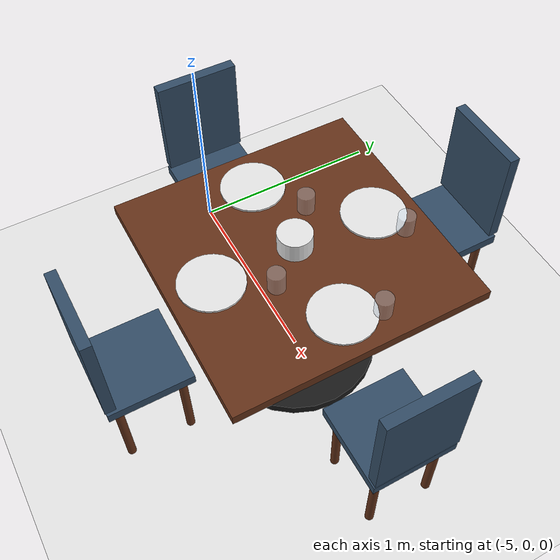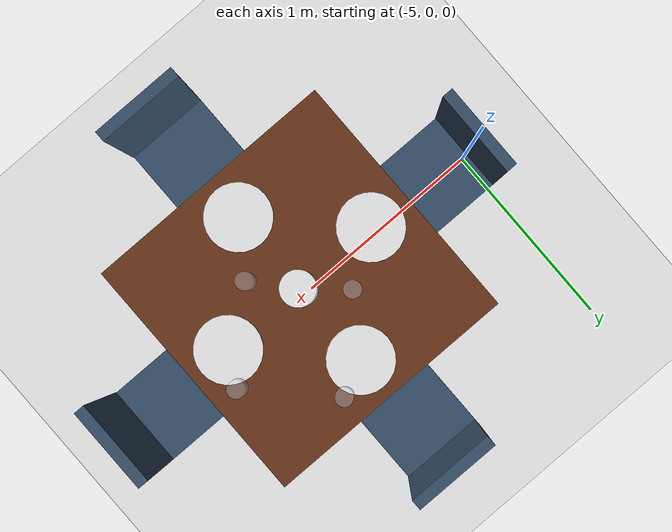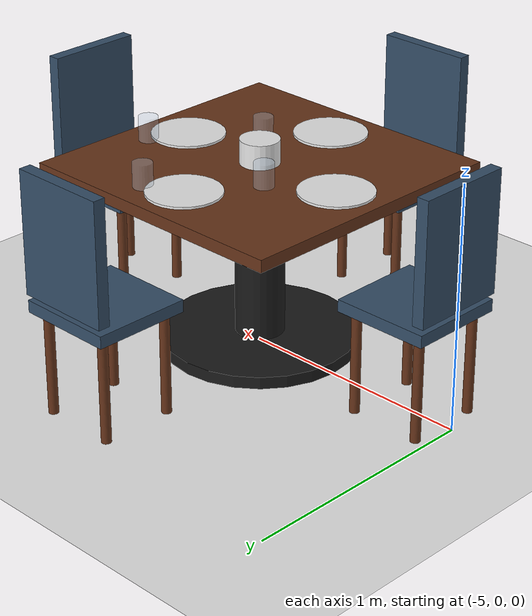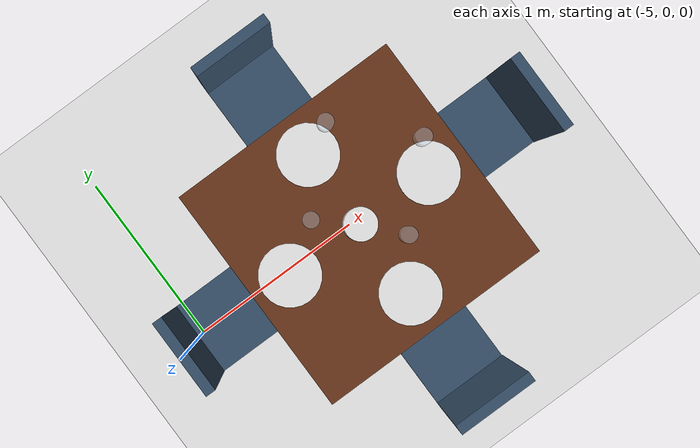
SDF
<sdf version="1.9">
 <world name="argo_restaurant">
  <model name="ground_plane">
   <static>true</static>
   <link name="link">
    <collision name="collision">
     <geometry><plane><normal>0 0 1</normal><size>100 100</size></plane></geometry>
    </collision>
    <visual name="visual">
     <geometry><plane><normal>0 0 1</normal><size>100 100</size></plane></geometry>
     <material>
      <ambient>0.9 0.9 0.9 1</ambient>
      <diffuse>0.9 0.9 0.9 1</diffuse>
      <specular>0.1 0.1 0.1 1</specular>
      <pbr><metal><roughness>0.1</roughness><metalness>0.0</metalness></metal></pbr>
     </material>
    </visual>
   </link>
  </model>
  <model name="table_3">
   <static>true</static>
   <link name="top_link">
    <pose>-4.0 0 0.75 0 0 0</pose>
    <collision name="top_collision"><geometry><box><size>1.2 1.2 0.05</size></box></geometry></collision>
    <visual name="top_visual">
     <geometry><box><size>1.2 1.2 0.05</size></box></geometry>
     <material>
      <ambient>0.4 0.2 0.1 1</ambient>
      <diffuse>0.4 0.2 0.1 1</diffuse>
      <specular>0.1 0.1 0.1 1</specular>
      <pbr><metal><roughness>0.7</roughness><metalness>0.1</metalness></metal></pbr>
     </material>
    </visual>
   </link>
   <link name="leg_link">
    <pose>-4.0 0 0.375 0 0 0</pose>
    <collision name="leg_collision">
     <geometry><cylinder><radius>0.1</radius><length>0.75</length></cylinder></geometry>
    </collision>
    <visual name="leg_visual">
     <geometry><cylinder><radius>0.1</radius><length>0.75</length></cylinder></geometry>
     <material>
      <ambient>0.1 0.1 0.1 1</ambient>
      <diffuse>0.1 0.1 0.1 1</diffuse>
      <specular>0.1 0.1 0.1 1</specular>
      <pbr><metal><roughness>0.5</roughness><metalness>0.0</metalness></metal></pbr>
     </material>
    </visual>
   </link>
   <link name="base_link">
    <pose>-4.0 0 0.025 0 0 0</pose>
    <collision name="base_collision">
     <geometry><cylinder><radius>0.4</radius><length>0.05</length></cylinder></geometry>
    </collision>
    <visual name="base_visual">
     <geometry><cylinder><radius>0.4</radius><length>0.05</length></cylinder></geometry>
     <material>
      <ambient>0.1 0.1 0.1 1</ambient>
      <diffuse>0.1 0.1 0.1 1</diffuse>
      <specular>0.1 0.1 0.1 1</specular>
      <pbr><metal><roughness>0.5</roughness><metalness>0.0</metalness></metal></pbr>
     </material>
    </visual>
   </link>
   <link name="chair_0_seat_link">
    <pose>-4.0 0.8 0.45 0 0 0</pose>
    <collision name="chair_0_seat_collision"><geometry><box><size>0.4 0.4 0.05</size></box></geometry></collision>
    <visual name="chair_0_seat_visual">
     <geometry><box><size>0.4 0.4 0.05</size></box></geometry>
     <material>
      <ambient>0.2 0.3 0.4 1</ambient>
      <diffuse>0.2 0.3 0.4 1</diffuse>
      <specular>0.1 0.1 0.1 1</specular>
      <pbr><metal><roughness>0.9</roughness><metalness>0.0</metalness></metal></pbr>
     </material>
    </visual>
   </link>
   <link name="chair_0_leg_-0.15_-0.15_link">
    <pose>-4.15 0.65 0.225 0 0 0</pose>
    <collision name="chair_0_leg_-0.15_-0.15_collision">
     <geometry><cylinder><radius>0.02</radius><length>0.45</length></cylinder></geometry>
    </collision>
    <visual name="chair_0_leg_-0.15_-0.15_visual">
     <geometry><cylinder><radius>0.02</radius><length>0.45</length></cylinder></geometry>
     <material>
      <ambient>0.4 0.2 0.1 1</ambient>
      <diffuse>0.4 0.2 0.1 1</diffuse>
      <specular>0.1 0.1 0.1 1</specular>
      <pbr><metal><roughness>0.7</roughness><metalness>0.1</metalness></metal></pbr>
     </material>
    </visual>
   </link>
   <link name="chair_0_leg_0.15_-0.15_link">
    <pose>-3.85 0.65 0.225 0 0 0</pose>
    <collision name="chair_0_leg_0.15_-0.15_collision">
     <geometry><cylinder><radius>0.02</radius><length>0.45</length></cylinder></geometry>
    </collision>
    <visual name="chair_0_leg_0.15_-0.15_visual">
     <geometry><cylinder><radius>0.02</radius><length>0.45</length></cylinder></geometry>
     <material>
      <ambient>0.4 0.2 0.1 1</ambient>
      <diffuse>0.4 0.2 0.1 1</diffuse>
      <specular>0.1 0.1 0.1 1</specular>
      <pbr><metal><roughness>0.7</roughness><metalness>0.1</metalness></metal></pbr>
     </material>
    </visual>
   </link>
   <link name="chair_0_leg_-0.15_0.15_link">
    <pose>-4.15 0.9500000000000001 0.225 0 0 0</pose>
    <collision name="chair_0_leg_-0.15_0.15_collision">
     <geometry><cylinder><radius>0.02</radius><length>0.45</length></cylinder></geometry>
    </collision>
    <visual name="chair_0_leg_-0.15_0.15_visual">
     <geometry><cylinder><radius>0.02</radius><length>0.45</length></cylinder></geometry>
     <material>
      <ambient>0.4 0.2 0.1 1</ambient>
      <diffuse>0.4 0.2 0.1 1</diffuse>
      <specular>0.1 0.1 0.1 1</specular>
      <pbr><metal><roughness>0.7</roughness><metalness>0.1</metalness></metal></pbr>
     </material>
    </visual>
   </link>
   <link name="chair_0_leg_0.15_0.15_link">
    <pose>-3.85 0.9500000000000001 0.225 0 0 0</pose>
    <collision name="chair_0_leg_0.15_0.15_collision">
     <geometry><cylinder><radius>0.02</radius><length>0.45</length></cylinder></geometry>
    </collision>
    <visual name="chair_0_leg_0.15_0.15_visual">
     <geometry><cylinder><radius>0.02</radius><length>0.45</length></cylinder></geometry>
     <material>
      <ambient>0.4 0.2 0.1 1</ambient>
      <diffuse>0.4 0.2 0.1 1</diffuse>
      <specular>0.1 0.1 0.1 1</specular>
      <pbr><metal><roughness>0.7</roughness><metalness>0.1</metalness></metal></pbr>
     </material>
    </visual>
   </link>
   <link name="chair_0_back_link">
    <pose>-4.0 0.98 0.75 0 0 0</pose>
    <collision name="chair_0_back_collision"><geometry><box><size>0.4 0.05 0.5</size></box></geometry></collision>
    <visual name="chair_0_back_visual">
     <geometry><box><size>0.4 0.05 0.5</size></box></geometry>
     <material>
      <ambient>0.2 0.3 0.4 1</ambient>
      <diffuse>0.2 0.3 0.4 1</diffuse>
      <specular>0.1 0.1 0.1 1</specular>
      <pbr><metal><roughness>0.9</roughness><metalness>0.0</metalness></metal></pbr>
     </material>
    </visual>
   </link>
   <link name="chair_1_seat_link">
    <pose>-4.0 -0.8 0.45 0 0 3.1415</pose>
    <collision name="chair_1_seat_collision"><geometry><box><size>0.4 0.4 0.05</size></box></geometry></collision>
    <visual name="chair_1_seat_visual">
     <geometry><box><size>0.4 0.4 0.05</size></box></geometry>
     <material>
      <ambient>0.2 0.3 0.4 1</ambient>
      <diffuse>0.2 0.3 0.4 1</diffuse>
      <specular>0.1 0.1 0.1 1</specular>
      <pbr><metal><roughness>0.9</roughness><metalness>0.0</metalness></metal></pbr>
     </material>
    </visual>
   </link>
   <link name="chair_1_leg_-0.15_-0.15_link">
    <pose>-4.15 -0.9500000000000001 0.225 0 0 0</pose>
    <collision name="chair_1_leg_-0.15_-0.15_collision">
     <geometry><cylinder><radius>0.02</radius><length>0.45</length></cylinder></geometry>
    </collision>
    <visual name="chair_1_leg_-0.15_-0.15_visual">
     <geometry><cylinder><radius>0.02</radius><length>0.45</length></cylinder></geometry>
     <material>
      <ambient>0.4 0.2 0.1 1</ambient>
      <diffuse>0.4 0.2 0.1 1</diffuse>
      <specular>0.1 0.1 0.1 1</specular>
      <pbr><metal><roughness>0.7</roughness><metalness>0.1</metalness></metal></pbr>
     </material>
    </visual>
   </link>
   <link name="chair_1_leg_0.15_-0.15_link">
    <pose>-3.85 -0.9500000000000001 0.225 0 0 0</pose>
    <collision name="chair_1_leg_0.15_-0.15_collision">
     <geometry><cylinder><radius>0.02</radius><length>0.45</length></cylinder></geometry>
    </collision>
    <visual name="chair_1_leg_0.15_-0.15_visual">
     <geometry><cylinder><radius>0.02</radius><length>0.45</length></cylinder></geometry>
     <material>
      <ambient>0.4 0.2 0.1 1</ambient>
      <diffuse>0.4 0.2 0.1 1</diffuse>
      <specular>0.1 0.1 0.1 1</specular>
      <pbr><metal><roughness>0.7</roughness><metalness>0.1</metalness></metal></pbr>
     </material>
    </visual>
   </link>
   <link name="chair_1_leg_-0.15_0.15_link">
    <pose>-4.15 -0.65 0.225 0 0 0</pose>
    <collision name="chair_1_leg_-0.15_0.15_collision">
     <geometry><cylinder><radius>0.02</radius><length>0.45</length></cylinder></geometry>
    </collision>
    <visual name="chair_1_leg_-0.15_0.15_visual">
     <geometry><cylinder><radius>0.02</radius><length>0.45</length></cylinder></geometry>
     <material>
      <ambient>0.4 0.2 0.1 1</ambient>
      <diffuse>0.4 0.2 0.1 1</diffuse>
      <specular>0.1 0.1 0.1 1</specular>
      <pbr><metal><roughness>0.7</roughness><metalness>0.1</metalness></metal></pbr>
     </material>
    </visual>
   </link>
   <link name="chair_1_leg_0.15_0.15_link">
    <pose>-3.85 -0.65 0.225 0 0 0</pose>
    <collision name="chair_1_leg_0.15_0.15_collision">
     <geometry><cylinder><radius>0.02</radius><length>0.45</length></cylinder></geometry>
    </collision>
    <visual name="chair_1_leg_0.15_0.15_visual">
     <geometry><cylinder><radius>0.02</radius><length>0.45</length></cylinder></geometry>
     <material>
      <ambient>0.4 0.2 0.1 1</ambient>
      <diffuse>0.4 0.2 0.1 1</diffuse>
      <specular>0.1 0.1 0.1 1</specular>
      <pbr><metal><roughness>0.7</roughness><metalness>0.1</metalness></metal></pbr>
     </material>
    </visual>
   </link>
   <link name="chair_1_back_link">
    <pose>-4.000016677646139 -0.9799999992273781 0.75 0 0 3.1415</pose>
    <collision name="chair_1_back_collision"><geometry><box><size>0.4 0.05 0.5</size></box></geometry></collision>
    <visual name="chair_1_back_visual">
     <geometry><box><size>0.4 0.05 0.5</size></box></geometry>
     <material>
      <ambient>0.2 0.3 0.4 1</ambient>
      <diffuse>0.2 0.3 0.4 1</diffuse>
      <specular>0.1 0.1 0.1 1</specular>
      <pbr><metal><roughness>0.9</roughness><metalness>0.0</metalness></metal></pbr>
     </material>
    </visual>
   </link>
   <link name="chair_2_seat_link">
    <pose>-3.2 0 0.45 0 0 -1.5707</pose>
    <collision name="chair_2_seat_collision"><geometry><box><size>0.4 0.4 0.05</size></box></geometry></collision>
    <visual name="chair_2_seat_visual">
     <geometry><box><size>0.4 0.4 0.05</size></box></geometry>
     <material>
      <ambient>0.2 0.3 0.4 1</ambient>
      <diffuse>0.2 0.3 0.4 1</diffuse>
      <specular>0.1 0.1 0.1 1</specular>
      <pbr><metal><roughness>0.9</roughness><metalness>0.0</metalness></metal></pbr>
     </material>
    </visual>
   </link>
   <link name="chair_2_leg_-0.15_-0.15_link">
    <pose>-3.35 -0.15 0.225 0 0 0</pose>
    <collision name="chair_2_leg_-0.15_-0.15_collision">
     <geometry><cylinder><radius>0.02</radius><length>0.45</length></cylinder></geometry>
    </collision>
    <visual name="chair_2_leg_-0.15_-0.15_visual">
     <geometry><cylinder><radius>0.02</radius><length>0.45</length></cylinder></geometry>
     <material>
      <ambient>0.4 0.2 0.1 1</ambient>
      <diffuse>0.4 0.2 0.1 1</diffuse>
      <specular>0.1 0.1 0.1 1</specular>
      <pbr><metal><roughness>0.7</roughness><metalness>0.1</metalness></metal></pbr>
     </material>
    </visual>
   </link>
   <link name="chair_2_leg_0.15_-0.15_link">
    <pose>-3.0500000000000003 -0.15 0.225 0 0 0</pose>
    <collision name="chair_2_leg_0.15_-0.15_collision">
     <geometry><cylinder><radius>0.02</radius><length>0.45</length></cylinder></geometry>
    </collision>
    <visual name="chair_2_leg_0.15_-0.15_visual">
     <geometry><cylinder><radius>0.02</radius><length>0.45</length></cylinder></geometry>
     <material>
      <ambient>0.4 0.2 0.1 1</ambient>
      <diffuse>0.4 0.2 0.1 1</diffuse>
      <specular>0.1 0.1 0.1 1</specular>
      <pbr><metal><roughness>0.7</roughness><metalness>0.1</metalness></metal></pbr>
     </material>
    </visual>
   </link>
   <link name="chair_2_leg_-0.15_0.15_link">
    <pose>-3.35 0.15 0.225 0 0 0</pose>
    <collision name="chair_2_leg_-0.15_0.15_collision">
     <geometry><cylinder><radius>0.02</radius><length>0.45</length></cylinder></geometry>
    </collision>
    <visual name="chair_2_leg_-0.15_0.15_visual">
     <geometry><cylinder><radius>0.02</radius><length>0.45</length></cylinder></geometry>
     <material>
      <ambient>0.4 0.2 0.1 1</ambient>
      <diffuse>0.4 0.2 0.1 1</diffuse>
      <specular>0.1 0.1 0.1 1</specular>
      <pbr><metal><roughness>0.7</roughness><metalness>0.1</metalness></metal></pbr>
     </material>
    </visual>
   </link>
   <link name="chair_2_leg_0.15_0.15_link">
    <pose>-3.0500000000000003 0.15 0.225 0 0 0</pose>
    <collision name="chair_2_leg_0.15_0.15_collision">
     <geometry><cylinder><radius>0.02</radius><length>0.45</length></cylinder></geometry>
    </collision>
    <visual name="chair_2_leg_0.15_0.15_visual">
     <geometry><cylinder><radius>0.02</radius><length>0.45</length></cylinder></geometry>
     <material>
      <ambient>0.4 0.2 0.1 1</ambient>
      <diffuse>0.4 0.2 0.1 1</diffuse>
      <specular>0.1 0.1 0.1 1</specular>
      <pbr><metal><roughness>0.7</roughness><metalness>0.1</metalness></metal></pbr>
     </material>
    </visual>
   </link>
   <link name="chair_2_back_link">
    <pose>-3.020000000835097 1.7338823054580086e-05 0.75 0 0 -1.5707</pose>
    <collision name="chair_2_back_collision"><geometry><box><size>0.4 0.05 0.5</size></box></geometry></collision>
    <visual name="chair_2_back_visual">
     <geometry><box><size>0.4 0.05 0.5</size></box></geometry>
     <material>
      <ambient>0.2 0.3 0.4 1</ambient>
      <diffuse>0.2 0.3 0.4 1</diffuse>
      <specular>0.1 0.1 0.1 1</specular>
      <pbr><metal><roughness>0.9</roughness><metalness>0.0</metalness></metal></pbr>
     </material>
    </visual>
   </link>
   <link name="chair_3_seat_link">
    <pose>-4.8 0 0.45 0 0 1.5707</pose>
    <collision name="chair_3_seat_collision"><geometry><box><size>0.4 0.4 0.05</size></box></geometry></collision>
    <visual name="chair_3_seat_visual">
     <geometry><box><size>0.4 0.4 0.05</size></box></geometry>
     <material>
      <ambient>0.2 0.3 0.4 1</ambient>
      <diffuse>0.2 0.3 0.4 1</diffuse>
      <specular>0.1 0.1 0.1 1</specular>
      <pbr><metal><roughness>0.9</roughness><metalness>0.0</metalness></metal></pbr>
     </material>
    </visual>
   </link>
   <link name="chair_3_leg_-0.15_-0.15_link">
    <pose>-4.95 -0.15 0.225 0 0 0</pose>
    <collision name="chair_3_leg_-0.15_-0.15_collision">
     <geometry><cylinder><radius>0.02</radius><length>0.45</length></cylinder></geometry>
    </collision>
    <visual name="chair_3_leg_-0.15_-0.15_visual">
     <geometry><cylinder><radius>0.02</radius><length>0.45</length></cylinder></geometry>
     <material>
      <ambient>0.4 0.2 0.1 1</ambient>
      <diffuse>0.4 0.2 0.1 1</diffuse>
      <specular>0.1 0.1 0.1 1</specular>
      <pbr><metal><roughness>0.7</roughness><metalness>0.1</metalness></metal></pbr>
     </material>
    </visual>
   </link>
   <link name="chair_3_leg_0.15_-0.15_link">
    <pose>-4.6499999999999995 -0.15 0.225 0 0 0</pose>
    <collision name="chair_3_leg_0.15_-0.15_collision">
     <geometry><cylinder><radius>0.02</radius><length>0.45</length></cylinder></geometry>
    </collision>
    <visual name="chair_3_leg_0.15_-0.15_visual">
     <geometry><cylinder><radius>0.02</radius><length>0.45</length></cylinder></geometry>
     <material>
      <ambient>0.4 0.2 0.1 1</ambient>
      <diffuse>0.4 0.2 0.1 1</diffuse>
      <specular>0.1 0.1 0.1 1</specular>
      <pbr><metal><roughness>0.7</roughness><metalness>0.1</metalness></metal></pbr>
     </material>
    </visual>
   </link>
   <link name="chair_3_leg_-0.15_0.15_link">
    <pose>-4.95 0.15 0.225 0 0 0</pose>
    <collision name="chair_3_leg_-0.15_0.15_collision">
     <geometry><cylinder><radius>0.02</radius><length>0.45</length></cylinder></geometry>
    </collision>
    <visual name="chair_3_leg_-0.15_0.15_visual">
     <geometry><cylinder><radius>0.02</radius><length>0.45</length></cylinder></geometry>
     <material>
      <ambient>0.4 0.2 0.1 1</ambient>
      <diffuse>0.4 0.2 0.1 1</diffuse>
      <specular>0.1 0.1 0.1 1</specular>
      <pbr><metal><roughness>0.7</roughness><metalness>0.1</metalness></metal></pbr>
     </material>
    </visual>
   </link>
   <link name="chair_3_leg_0.15_0.15_link">
    <pose>-4.6499999999999995 0.15 0.225 0 0 0</pose>
    <collision name="chair_3_leg_0.15_0.15_collision">
     <geometry><cylinder><radius>0.02</radius><length>0.45</length></cylinder></geometry>
    </collision>
    <visual name="chair_3_leg_0.15_0.15_visual">
     <geometry><cylinder><radius>0.02</radius><length>0.45</length></cylinder></geometry>
     <material>
      <ambient>0.4 0.2 0.1 1</ambient>
      <diffuse>0.4 0.2 0.1 1</diffuse>
      <specular>0.1 0.1 0.1 1</specular>
      <pbr><metal><roughness>0.7</roughness><metalness>0.1</metalness></metal></pbr>
     </material>
    </visual>
   </link>
   <link name="chair_3_back_link">
    <pose>-4.979999999164903 1.7338823054580086e-05 0.75 0 0 1.5707</pose>
    <collision name="chair_3_back_collision"><geometry><box><size>0.4 0.05 0.5</size></box></geometry></collision>
    <visual name="chair_3_back_visual">
     <geometry><box><size>0.4 0.05 0.5</size></box></geometry>
     <material>
      <ambient>0.2 0.3 0.4 1</ambient>
      <diffuse>0.2 0.3 0.4 1</diffuse>
      <specular>0.1 0.1 0.1 1</specular>
      <pbr><metal><roughness>0.9</roughness><metalness>0.0</metalness></metal></pbr>
     </material>
    </visual>
   </link>
   <link name="centerpiece_pot_link">
    <pose>-4.0 0 0.825 0 0 0</pose>
    <collision name="centerpiece_pot_collision">
     <geometry><cylinder><radius>0.08</radius><length>0.1</length></cylinder></geometry>
    </collision>
    <visual name="centerpiece_pot_visual">
     <geometry><cylinder><radius>0.08</radius><length>0.1</length></cylinder></geometry>
     <material>
      <ambient>0.9 0.9 0.9 1</ambient>
      <diffuse>0.9 0.9 0.9 1</diffuse>
      <specular>0.1 0.1 0.1 1</specular>
      <pbr><metal><roughness>0.2</roughness><metalness>0.0</metalness></metal></pbr>
     </material>
    </visual>
   </link>
   <link name="plate_0_link">
    <pose>-4.0 0.4 0.78 0 0 0</pose>
    <collision name="plate_0_collision">
     <geometry><cylinder><radius>0.15</radius><length>0.01</length></cylinder></geometry>
    </collision>
    <visual name="plate_0_visual">
     <geometry><cylinder><radius>0.15</radius><length>0.01</length></cylinder></geometry>
     <material>
      <ambient>0.9 0.9 0.9 1</ambient>
      <diffuse>0.9 0.9 0.9 1</diffuse>
      <specular>0.1 0.1 0.1 1</specular>
      <pbr><metal><roughness>0.2</roughness><metalness>0.0</metalness></metal></pbr>
     </material>
    </visual>
   </link>
   <link name="glass_0_link">
    <pose>-3.85 0.4700000000000001 0.825 0 0 0</pose>
    <collision name="glass_0_collision">
     <geometry><cylinder><radius>0.04</radius><length>0.1</length></cylinder></geometry>
    </collision>
    <visual name="glass_0_visual">
     <geometry><cylinder><radius>0.04</radius><length>0.1</length></cylinder></geometry>
     <material>
      <ambient>0.8 0.9 1.0 0.3</ambient>
      <diffuse>0.8 0.9 1.0 0.3</diffuse>
      <specular>0.9 0.9 0.9 1</specular>
      <pbr><metal><roughness>0.0</roughness><metalness>0.9</metalness></metal></pbr>
     </material>
    </visual>
   </link>
   <link name="plate_1_link">
    <pose>-4.0 -0.4 0.78 0 0 0</pose>
    <collision name="plate_1_collision">
     <geometry><cylinder><radius>0.15</radius><length>0.01</length></cylinder></geometry>
    </collision>
    <visual name="plate_1_visual">
     <geometry><cylinder><radius>0.15</radius><length>0.01</length></cylinder></geometry>
     <material>
      <ambient>0.9 0.9 0.9 1</ambient>
      <diffuse>0.9 0.9 0.9 1</diffuse>
      <specular>0.1 0.1 0.1 1</specular>
      <pbr><metal><roughness>0.2</roughness><metalness>0.0</metalness></metal></pbr>
     </material>
    </visual>
   </link>
   <link name="glass_1_link">
    <pose>-3.85 -0.17000000000000007 0.825 0 0 0</pose>
    <collision name="glass_1_collision">
     <geometry><cylinder><radius>0.04</radius><length>0.1</length></cylinder></geometry>
    </collision>
    <visual name="glass_1_visual">
     <geometry><cylinder><radius>0.04</radius><length>0.1</length></cylinder></geometry>
     <material>
      <ambient>0.8 0.9 1.0 0.3</ambient>
      <diffuse>0.8 0.9 1.0 0.3</diffuse>
      <specular>0.9 0.9 0.9 1</specular>
      <pbr><metal><roughness>0.0</roughness><metalness>0.9</metalness></metal></pbr>
     </material>
    </visual>
   </link>
   <link name="plate_2_link">
    <pose>-3.6 0 0.78 0 0 0</pose>
    <collision name="plate_2_collision">
     <geometry><cylinder><radius>0.15</radius><length>0.01</length></cylinder></geometry>
    </collision>
    <visual name="plate_2_visual">
     <geometry><cylinder><radius>0.15</radius><length>0.01</length></cylinder></geometry>
     <material>
      <ambient>0.9 0.9 0.9 1</ambient>
      <diffuse>0.9 0.9 0.9 1</diffuse>
      <specular>0.1 0.1 0.1 1</specular>
      <pbr><metal><roughness>0.2</roughness><metalness>0.0</metalness></metal></pbr>
     </material>
    </visual>
   </link>
   <link name="glass_2_link">
    <pose>-3.53 0.15 0.825 0 0 0</pose>
    <collision name="glass_2_collision">
     <geometry><cylinder><radius>0.04</radius><length>0.1</length></cylinder></geometry>
    </collision>
    <visual name="glass_2_visual">
     <geometry><cylinder><radius>0.04</radius><length>0.1</length></cylinder></geometry>
     <material>
      <ambient>0.8 0.9 1.0 0.3</ambient>
      <diffuse>0.8 0.9 1.0 0.3</diffuse>
      <specular>0.9 0.9 0.9 1</specular>
      <pbr><metal><roughness>0.0</roughness><metalness>0.9</metalness></metal></pbr>
     </material>
    </visual>
   </link>
   <link name="plate_3_link">
    <pose>-4.4 0 0.78 0 0 0</pose>
    <collision name="plate_3_collision">
     <geometry><cylinder><radius>0.15</radius><length>0.01</length></cylinder></geometry>
    </collision>
    <visual name="plate_3_visual">
     <geometry><cylinder><radius>0.15</radius><length>0.01</length></cylinder></geometry>
     <material>
      <ambient>0.9 0.9 0.9 1</ambient>
      <diffuse>0.9 0.9 0.9 1</diffuse>
      <specular>0.1 0.1 0.1 1</specular>
      <pbr><metal><roughness>0.2</roughness><metalness>0.0</metalness></metal></pbr>
     </material>
    </visual>
   </link>
   <link name="glass_3_link">
    <pose>-4.17 0.15 0.825 0 0 0</pose>
    <collision name="glass_3_collision">
     <geometry><cylinder><radius>0.04</radius><length>0.1</length></cylinder></geometry>
    </collision>
    <visual name="glass_3_visual">
     <geometry><cylinder><radius>0.04</radius><length>0.1</length></cylinder></geometry>
     <material>
      <ambient>0.8 0.9 1.0 0.3</ambient>
      <diffuse>0.8 0.9 1.0 0.3</diffuse>
      <specular>0.9 0.9 0.9 1</specular>
      <pbr><metal><roughness>0.0</roughness><metalness>0.9</metalness></metal></pbr>
     </material>
    </visual>
   </link>
  </model>
 </world>
</sdf>
